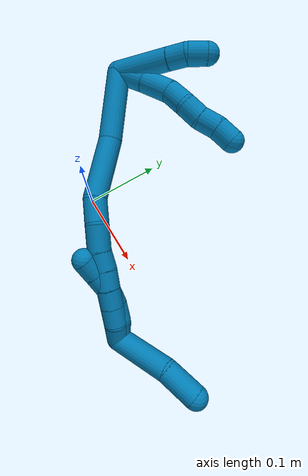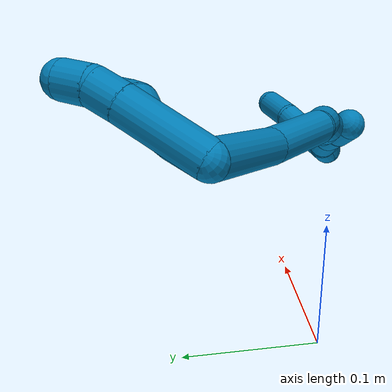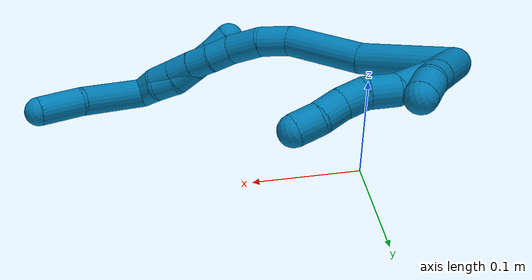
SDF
<sdf version="1.7">
 <world name="default">
  <model name="9">
   <static>0</static>
   <link name="9">
    <collision name="collision-cylinder-e_1_2_8">
     <pose>0.008202 0.013045 -0.002982 -1.79554 0.549912 -0.680235</pose>
     <geometry><cylinder><radius>0.0125</radius><length>0.03139</length></cylinder></geometry>
     <surface>
      <friction><ode><mu>1.16</mu><mu2>1.16</mu2><slip1>0</slip1><slip2>0</slip2></ode></friction>
      <contact><ode><kp>1e+06</kp><kd>1</kd><max_vel>0</max_vel><min_depth>0.001</min_depth></ode></contact>
     </surface>
    </collision>
    <visual name="visual-cylinder-e_1_2_8">
     <pose>0.008202 0.013045 -0.002982 -1.79554 0.549912 -0.680235</pose>
     <geometry><cylinder><radius>0.0125</radius><length>0.03139</length></cylinder></geometry>
     <material><ambient>0 0.490196 0.709804 1</ambient></material>
    </visual>
    <collision name="collision-cylinder-e_2_8_9">
     <pose>0.025999 0.03869 -0.009871 -1.87145 0.628793 -0.831153</pose>
     <geometry><cylinder><radius>0.0125</radius><length>0.032625</length></cylinder></geometry>
     <surface>
      <friction><ode><mu>1.16</mu><mu2>1.16</mu2><slip1>0</slip1><slip2>0</slip2></ode></friction>
      <contact><ode><kp>1e+06</kp><kd>1</kd><max_vel>0</max_vel><min_depth>0.001</min_depth></ode></contact>
     </surface>
    </collision>
    <visual name="visual-cylinder-e_2_8_9">
     <pose>0.025999 0.03869 -0.009871 -1.87145 0.628793 -0.831153</pose>
     <geometry><cylinder><radius>0.0125</radius><length>0.032625</length></cylinder></geometry>
     <material><ambient>0 0.490196 0.709804 1</ambient></material>
    </visual>
    <collision name="collision-cylinder-e_3_9_10">
     <pose>0.044214 0.057784 -0.019119 -2.2591 0.79786 -1.45732</pose>
     <geometry><cylinder><radius>0.0125</radius><length>0.024082</length></cylinder></geometry>
     <surface>
      <friction><ode><mu>1.16</mu><mu2>1.16</mu2><slip1>0</slip1><slip2>0</slip2></ode></friction>
      <contact><ode><kp>1e+06</kp><kd>1</kd><max_vel>0</max_vel><min_depth>0.001</min_depth></ode></contact>
     </surface>
    </collision>
    <visual name="visual-cylinder-e_3_9_10">
     <pose>0.044214 0.057784 -0.019119 -2.2591 0.79786 -1.45732</pose>
     <geometry><cylinder><radius>0.0125</radius><length>0.024082</length></cylinder></geometry>
     <material><ambient>0 0.490196 0.709804 1</ambient></material>
    </visual>
    <collision name="collision-cylinder-e_4_10_11">
     <pose>0.057519 0.071495 -0.030109 -2.23493 0.472588 -0.918096</pose>
     <geometry><cylinder><radius>0.0125</radius><length>0.020588</length></cylinder></geometry>
     <surface>
      <friction><ode><mu>1.16</mu><mu2>1.16</mu2><slip1>0</slip1><slip2>0</slip2></ode></friction>
      <contact><ode><kp>1e+06</kp><kd>1</kd><max_vel>0</max_vel><min_depth>0.001</min_depth></ode></contact>
     </surface>
    </collision>
    <visual name="visual-cylinder-e_4_10_11">
     <pose>0.057519 0.071495 -0.030109 -2.23493 0.472588 -0.918096</pose>
     <geometry><cylinder><radius>0.0125</radius><length>0.020588</length></cylinder></geometry>
     <material><ambient>0 0.490196 0.709804 1</ambient></material>
    </visual>
    <collision name="collision-cylinder-e_5_11_12">
     <pose>0.066346 0.087491 -0.039475 -1.97134 0.409778 -0.607881</pose>
     <geometry><cylinder><radius>0.0125</radius><length>0.020787</length></cylinder></geometry>
     <surface>
      <friction><ode><mu>1.16</mu><mu2>1.16</mu2><slip1>0</slip1><slip2>0</slip2></ode></friction>
      <contact><ode><kp>1e+06</kp><kd>1</kd><max_vel>0</max_vel><min_depth>0.001</min_depth></ode></contact>
     </surface>
    </collision>
    <visual name="visual-cylinder-e_5_11_12">
     <pose>0.066346 0.087491 -0.039475 -1.97134 0.409778 -0.607881</pose>
     <geometry><cylinder><radius>0.0125</radius><length>0.020787</length></cylinder></geometry>
     <material><ambient>0 0.490196 0.709804 1</ambient></material>
    </visual>
    <collision name="collision-cylinder-e_6_12_6">
     <pose>0.075077 0.10356 -0.048771 -2.22389 0.463712 -0.891653</pose>
     <geometry><cylinder><radius>0.0125</radius><length>0.020528</length></cylinder></geometry>
     <surface>
      <friction><ode><mu>1.16</mu><mu2>1.16</mu2><slip1>0</slip1><slip2>0</slip2></ode></friction>
      <contact><ode><kp>1e+06</kp><kd>1</kd><max_vel>0</max_vel><min_depth>0.001</min_depth></ode></contact>
     </surface>
    </collision>
    <visual name="visual-cylinder-e_6_12_6">
     <pose>0.075077 0.10356 -0.048771 -2.22389 0.463712 -0.891653</pose>
     <geometry><cylinder><radius>0.0125</radius><length>0.020528</length></cylinder></geometry>
     <material><ambient>0 0.490196 0.709804 1</ambient></material>
    </visual>
    <collision name="collision-cylinder-e_1_2_13">
     <pose>0.015464 0.023388 0.009375 -1.18956 0.550451 -0.377529</pose>
     <geometry><cylinder><radius>0.0125</radius><length>0.059127</length></cylinder></geometry>
     <surface>
      <friction><ode><mu>1.16</mu><mu2>1.16</mu2><slip1>0</slip1><slip2>0</slip2></ode></friction>
      <contact><ode><kp>1e+06</kp><kd>1</kd><max_vel>0</max_vel><min_depth>0.001</min_depth></ode></contact>
     </surface>
    </collision>
    <visual name="visual-cylinder-e_1_2_13">
     <pose>0.015464 0.023388 0.009375 -1.18956 0.550451 -0.377529</pose>
     <geometry><cylinder><radius>0.0125</radius><length>0.059127</length></cylinder></geometry>
     <material><ambient>0 0.490196 0.709804 1</ambient></material>
    </visual>
    <collision name="collision-cylinder-e_2_13_14">
     <pose>0.035906 0.054932 0.021945 -1.1974 0.516815 -0.356815</pose>
     <geometry><cylinder><radius>0.0125</radius><length>0.020151</length></cylinder></geometry>
     <surface>
      <friction><ode><mu>1.16</mu><mu2>1.16</mu2><slip1>0</slip1><slip2>0</slip2></ode></friction>
      <contact><ode><kp>1e+06</kp><kd>1</kd><max_vel>0</max_vel><min_depth>0.001</min_depth></ode></contact>
     </surface>
    </collision>
    <visual name="visual-cylinder-e_2_13_14">
     <pose>0.035906 0.054932 0.021945 -1.1974 0.516815 -0.356815</pose>
     <geometry><cylinder><radius>0.0125</radius><length>0.020151</length></cylinder></geometry>
     <material><ambient>0 0.490196 0.709804 1</ambient></material>
    </visual>
    <collision name="collision-cylinder-e_3_14_5">
     <pose>0.04372 0.072982 0.026327 -1.45145 0.277239 -0.246314</pose>
     <geometry><cylinder><radius>0.0125</radius><length>0.020722</length></cylinder></geometry>
     <surface>
      <friction><ode><mu>1.16</mu><mu2>1.16</mu2><slip1>0</slip1><slip2>0</slip2></ode></friction>
      <contact><ode><kp>1e+06</kp><kd>1</kd><max_vel>0</max_vel><min_depth>0.001</min_depth></ode></contact>
     </surface>
    </collision>
    <visual name="visual-cylinder-e_3_14_5">
     <pose>0.04372 0.072982 0.026327 -1.45145 0.277239 -0.246314</pose>
     <geometry><cylinder><radius>0.0125</radius><length>0.020722</length></cylinder></geometry>
     <material><ambient>0 0.490196 0.709804 1</ambient></material>
    </visual>
    <collision name="collision-cylinder-e_1_2_15">
     <pose>0.016085 -0.003873 -0.035315 3.03235 0.425132 2.64538</pose>
     <geometry><cylinder><radius>0.0125</radius><length>0.077997</length></cylinder></geometry>
     <surface>
      <friction><ode><mu>1.16</mu><mu2>1.16</mu2><slip1>0</slip1><slip2>0</slip2></ode></friction>
      <contact><ode><kp>1e+06</kp><kd>1</kd><max_vel>0</max_vel><min_depth>0.001</min_depth></ode></contact>
     </surface>
    </collision>
    <visual name="visual-cylinder-e_1_2_15">
     <pose>0.016085 -0.003873 -0.035315 3.03235 0.425132 2.64538</pose>
     <geometry><cylinder><radius>0.0125</radius><length>0.077997</length></cylinder></geometry>
     <material><ambient>0 0.490196 0.709804 1</ambient></material>
    </visual>
    <collision name="collision-cylinder-e_2_15_16">
     <pose>0.048925 -0.015425 -0.098641 2.87405 0.52326 2.21016</pose>
     <geometry><cylinder><radius>0.0125</radius><length>0.067061</length></cylinder></geometry>
     <surface>
      <friction><ode><mu>1.16</mu><mu2>1.16</mu2><slip1>0</slip1><slip2>0</slip2></ode></friction>
      <contact><ode><kp>1e+06</kp><kd>1</kd><max_vel>0</max_vel><min_depth>0.001</min_depth></ode></contact>
     </surface>
    </collision>
    <visual name="visual-cylinder-e_2_15_16">
     <pose>0.048925 -0.015425 -0.098641 2.87405 0.52326 2.21016</pose>
     <geometry><cylinder><radius>0.0125</radius><length>0.067061</length></cylinder></geometry>
     <material><ambient>0 0.490196 0.709804 1</ambient></material>
    </visual>
    <collision name="collision-cylinder-e_3_16_17">
     <pose>0.072172 -0.021924 -0.137803 -3.03621 0.524814 -2.75384</pose>
     <geometry><cylinder><radius>0.0125</radius><length>0.025914</length></cylinder></geometry>
     <surface>
      <friction><ode><mu>1.16</mu><mu2>1.16</mu2><slip1>0</slip1><slip2>0</slip2></ode></friction>
      <contact><ode><kp>1e+06</kp><kd>1</kd><max_vel>0</max_vel><min_depth>0.001</min_depth></ode></contact>
     </surface>
    </collision>
    <visual name="visual-cylinder-e_3_16_17">
     <pose>0.072172 -0.021924 -0.137803 -3.03621 0.524814 -2.75384</pose>
     <geometry><cylinder><radius>0.0125</radius><length>0.025914</length></cylinder></geometry>
     <material><ambient>0 0.490196 0.709804 1</ambient></material>
    </visual>
    <collision name="collision-cylinder-e_4_17_18">
     <pose>0.082448 -0.018887 -0.162711 -3.00739 0.266064 -2.21081</pose>
     <geometry><cylinder><radius>0.0125</radius><length>0.028776</length></cylinder></geometry>
     <surface>
      <friction><ode><mu>1.16</mu><mu2>1.16</mu2><slip1>0</slip1><slip2>0</slip2></ode></friction>
      <contact><ode><kp>1e+06</kp><kd>1</kd><max_vel>0</max_vel><min_depth>0.001</min_depth></ode></contact>
     </surface>
    </collision>
    <visual name="visual-cylinder-e_4_17_18">
     <pose>0.082448 -0.018887 -0.162711 -3.00739 0.266064 -2.21081</pose>
     <geometry><cylinder><radius>0.0125</radius><length>0.028776</length></cylinder></geometry>
     <material><ambient>0 0.490196 0.709804 1</ambient></material>
    </visual>
    <collision name="collision-cylinder-e_5_18_19">
     <pose>0.088723 -0.013723 -0.185629 -2.79524 0.250515 -1.24782</pose>
     <geometry><cylinder><radius>0.0125</radius><length>0.020106</length></cylinder></geometry>
     <surface>
      <friction><ode><mu>1.16</mu><mu2>1.16</mu2><slip1>0</slip1><slip2>0</slip2></ode></friction>
      <contact><ode><kp>1e+06</kp><kd>1</kd><max_vel>0</max_vel><min_depth>0.001</min_depth></ode></contact>
     </surface>
    </collision>
    <visual name="visual-cylinder-e_5_18_19">
     <pose>0.088723 -0.013723 -0.185629 -2.79524 0.250515 -1.24782</pose>
     <geometry><cylinder><radius>0.0125</radius><length>0.020106</length></cylinder></geometry>
     <material><ambient>0 0.490196 0.709804 1</ambient></material>
    </visual>
    <collision name="collision-cylinder-e_6_19_20">
     <pose>0.093541 -0.008243 -0.204336 -2.91764 0.233202 -1.61161</pose>
     <geometry><cylinder><radius>0.0125</radius><length>0.020126</length></cylinder></geometry>
     <surface>
      <friction><ode><mu>1.16</mu><mu2>1.16</mu2><slip1>0</slip1><slip2>0</slip2></ode></friction>
      <contact><ode><kp>1e+06</kp><kd>1</kd><max_vel>0</max_vel><min_depth>0.001</min_depth></ode></contact>
     </surface>
    </collision>
    <visual name="visual-cylinder-e_6_19_20">
     <pose>0.093541 -0.008243 -0.204336 -2.91764 0.233202 -1.61161</pose>
     <geometry><cylinder><radius>0.0125</radius><length>0.020126</length></cylinder></geometry>
     <material><ambient>0 0.490196 0.709804 1</ambient></material>
    </visual>
    <collision name="collision-cylinder-e_7_20_21">
     <pose>0.097638 -0.003479 -0.22338 -2.87542 0.178107 -1.1764</pose>
     <geometry><cylinder><radius>0.0125</radius><length>0.020006</length></cylinder></geometry>
     <surface>
      <friction><ode><mu>1.16</mu><mu2>1.16</mu2><slip1>0</slip1><slip2>0</slip2></ode></friction>
      <contact><ode><kp>1e+06</kp><kd>1</kd><max_vel>0</max_vel><min_depth>0.001</min_depth></ode></contact>
     </surface>
    </collision>
    <visual name="visual-cylinder-e_7_20_21">
     <pose>0.097638 -0.003479 -0.22338 -2.87542 0.178107 -1.1764</pose>
     <geometry><cylinder><radius>0.0125</radius><length>0.020006</length></cylinder></geometry>
     <material><ambient>0 0.490196 0.709804 1</ambient></material>
    </visual>
    <collision name="collision-cylinder-e_8_21_22">
     <pose>0.101177 0.001647 -0.242394 -2.88114 0.177465 -1.19341</pose>
     <geometry><cylinder><radius>0.0125</radius><length>0.020012</length></cylinder></geometry>
     <surface>
      <friction><ode><mu>1.16</mu><mu2>1.16</mu2><slip1>0</slip1><slip2>0</slip2></ode></friction>
      <contact><ode><kp>1e+06</kp><kd>1</kd><max_vel>0</max_vel><min_depth>0.001</min_depth></ode></contact>
     </surface>
    </collision>
    <visual name="visual-cylinder-e_8_21_22">
     <pose>0.101177 0.001647 -0.242394 -2.88114 0.177465 -1.19341</pose>
     <geometry><cylinder><radius>0.0125</radius><length>0.020012</length></cylinder></geometry>
     <material><ambient>0 0.490196 0.709804 1</ambient></material>
    </visual>
    <collision name="collision-cylinder-e_9_22_1">
     <pose>0.102142 0.006597 -0.261583 -2.89706 -0.080242 0.631504</pose>
     <geometry><cylinder><radius>0.0125</radius><length>0.020002</length></cylinder></geometry>
     <surface>
      <friction><ode><mu>1.16</mu><mu2>1.16</mu2><slip1>0</slip1><slip2>0</slip2></ode></friction>
      <contact><ode><kp>1e+06</kp><kd>1</kd><max_vel>0</max_vel><min_depth>0.001</min_depth></ode></contact>
     </surface>
    </collision>
    <visual name="visual-cylinder-e_9_22_1">
     <pose>0.102142 0.006597 -0.261583 -2.89706 -0.080242 0.631504</pose>
     <geometry><cylinder><radius>0.0125</radius><length>0.020002</length></cylinder></geometry>
     <material><ambient>0 0.490196 0.709804 1</ambient></material>
    </visual>
    <collision name="collision-cylinder-e_1_1_23">
     <pose>0.10058 0.008577 -0.261294 0.043477 -0.076086 -0.001655</pose>
     <geometry><cylinder><radius>0.0125</radius><length>0.02</length></cylinder></geometry>
     <surface>
      <friction><ode><mu>1.16</mu><mu2>1.16</mu2><slip1>0</slip1><slip2>0</slip2></ode></friction>
      <contact><ode><kp>1e+06</kp><kd>1</kd><max_vel>0</max_vel><min_depth>0.001</min_depth></ode></contact>
     </surface>
    </collision>
    <visual name="visual-cylinder-e_1_1_23">
     <pose>0.10058 0.008577 -0.261294 0.043477 -0.076086 -0.001655</pose>
     <geometry><cylinder><radius>0.0125</radius><length>0.02</length></cylinder></geometry>
     <material><ambient>0 0.490196 0.709804 1</ambient></material>
    </visual>
    <collision name="collision-cylinder-e_2_23_24">
     <pose>0.096866 0.005448 -0.242167 0.286041 -0.299837 -0.043497</pose>
     <geometry><cylinder><radius>0.0125</radius><length>0.02</length></cylinder></geometry>
     <surface>
      <friction><ode><mu>1.16</mu><mu2>1.16</mu2><slip1>0</slip1><slip2>0</slip2></ode></friction>
      <contact><ode><kp>1e+06</kp><kd>1</kd><max_vel>0</max_vel><min_depth>0.001</min_depth></ode></contact>
     </surface>
    </collision>
    <visual name="visual-cylinder-e_2_23_24">
     <pose>0.096866 0.005448 -0.242167 0.286041 -0.299837 -0.043497</pose>
     <geometry><cylinder><radius>0.0125</radius><length>0.02</length></cylinder></geometry>
     <material><ambient>0 0.490196 0.709804 1</ambient></material>
    </visual>
    <collision name="collision-cylinder-e_3_24_25">
     <pose>0.093408 -0.001755 -0.224089 0.468227 -0.050431 -0.01203</pose>
     <geometry><cylinder><radius>0.0125</radius><length>0.02</length></cylinder></geometry>
     <surface>
      <friction><ode><mu>1.16</mu><mu2>1.16</mu2><slip1>0</slip1><slip2>0</slip2></ode></friction>
      <contact><ode><kp>1e+06</kp><kd>1</kd><max_vel>0</max_vel><min_depth>0.001</min_depth></ode></contact>
     </surface>
    </collision>
    <visual name="visual-cylinder-e_3_24_25">
     <pose>0.093408 -0.001755 -0.224089 0.468227 -0.050431 -0.01203</pose>
     <geometry><cylinder><radius>0.0125</radius><length>0.02</length></cylinder></geometry>
     <material><ambient>0 0.490196 0.709804 1</ambient></material>
    </visual>
    <collision name="collision-cylinder-e_4_25_26">
     <pose>0.091529 -0.012815 -0.207748 0.722873 -0.137928 -0.052214</pose>
     <geometry><cylinder><radius>0.0125</radius><length>0.02</length></cylinder></geometry>
     <surface>
      <friction><ode><mu>1.16</mu><mu2>1.16</mu2><slip1>0</slip1><slip2>0</slip2></ode></friction>
      <contact><ode><kp>1e+06</kp><kd>1</kd><max_vel>0</max_vel><min_depth>0.001</min_depth></ode></contact>
     </surface>
    </collision>
    <visual name="visual-cylinder-e_4_25_26">
     <pose>0.091529 -0.012815 -0.207748 0.722873 -0.137928 -0.052214</pose>
     <geometry><cylinder><radius>0.0125</radius><length>0.02</length></cylinder></geometry>
     <material><ambient>0 0.490196 0.709804 1</ambient></material>
    </visual>
    <collision name="collision-cylinder-e_5_26_4">
     <pose>0.089808 -0.025906 -0.192762 0.713174 -0.034616 -0.012896</pose>
     <geometry><cylinder><radius>0.0125</radius><length>0.02</length></cylinder></geometry>
     <surface>
      <friction><ode><mu>1.16</mu><mu2>1.16</mu2><slip1>0</slip1><slip2>0</slip2></ode></friction>
      <contact><ode><kp>1e+06</kp><kd>1</kd><max_vel>0</max_vel><min_depth>0.001</min_depth></ode></contact>
     </surface>
    </collision>
    <visual name="visual-cylinder-e_5_26_4">
     <pose>0.089808 -0.025906 -0.192762 0.713174 -0.034616 -0.012896</pose>
     <geometry><cylinder><radius>0.0125</radius><length>0.02</length></cylinder></geometry>
     <material><ambient>0 0.490196 0.709804 1</ambient></material>
    </visual>
    <collision name="collision-cylinder-e_1_1_27">
     <pose>0.123444 0.030687 -0.275495 -1.76392 0.785786 -0.932636</pose>
     <geometry><cylinder><radius>0.0125</radius><length>0.062496</length></cylinder></geometry>
     <surface>
      <friction><ode><mu>1.16</mu><mu2>1.16</mu2><slip1>0</slip1><slip2>0</slip2></ode></friction>
      <contact><ode><kp>1e+06</kp><kd>1</kd><max_vel>0</max_vel><min_depth>0.001</min_depth></ode></contact>
     </surface>
    </collision>
    <visual name="visual-cylinder-e_1_1_27">
     <pose>0.123444 0.030687 -0.275495 -1.76392 0.785786 -0.932636</pose>
     <geometry><cylinder><radius>0.0125</radius><length>0.062496</length></cylinder></geometry>
     <material><ambient>0 0.490196 0.709804 1</ambient></material>
    </visual>
    <collision name="collision-cylinder-e_2_27_3">
     <pose>0.157404 0.06499 -0.28692 -2.08821 0.684447 -1.09933</pose>
     <geometry><cylinder><radius>0.0125</radius><length>0.037504</length></cylinder></geometry>
     <surface>
      <friction><ode><mu>1.16</mu><mu2>1.16</mu2><slip1>0</slip1><slip2>0</slip2></ode></friction>
      <contact><ode><kp>1e+06</kp><kd>1</kd><max_vel>0</max_vel><min_depth>0.001</min_depth></ode></contact>
     </surface>
    </collision>
    <visual name="visual-cylinder-e_2_27_3">
     <pose>0.157404 0.06499 -0.28692 -2.08821 0.684447 -1.09933</pose>
     <geometry><cylinder><radius>0.0125</radius><length>0.037504</length></cylinder></geometry>
     <material><ambient>0 0.490196 0.709804 1</ambient></material>
    </visual>
    <collision name="collision-sphere-3">
     <pose>0.16926 0.077616 -0.294106 0 -0 0</pose>
     <geometry><sphere><radius>0.0125</radius></sphere></geometry>
     <surface>
      <friction><ode><mu>1.16</mu><mu2>1.16</mu2><slip1>0</slip1><slip2>0</slip2></ode></friction>
      <contact><ode><kp>1e+06</kp><kd>1</kd><max_vel>0</max_vel><min_depth>0.001</min_depth></ode></contact>
     </surface>
    </collision>
    <visual name="visual-sphere-3">
     <pose>0.16926 0.077616 -0.294106 0 -0 0</pose>
     <geometry><sphere><radius>0.0125</radius></sphere></geometry>
     <material><ambient>0 0.490196 0.709804 1</ambient></material>
    </visual>
    <collision name="collision-sphere-27">
     <pose>0.145549 0.052363 -0.279734 0 -0 0</pose>
     <geometry><sphere><radius>0.0125</radius></sphere></geometry>
     <surface>
      <friction><ode><mu>1.16</mu><mu2>1.16</mu2><slip1>0</slip1><slip2>0</slip2></ode></friction>
      <contact><ode><kp>1e+06</kp><kd>1</kd><max_vel>0</max_vel><min_depth>0.001</min_depth></ode></contact>
     </surface>
    </collision>
    <visual name="visual-sphere-27">
     <pose>0.145549 0.052363 -0.279734 0 -0 0</pose>
     <geometry><sphere><radius>0.0125</radius></sphere></geometry>
     <material><ambient>0 0.490196 0.709804 1</ambient></material>
    </visual>
    <collision name="collision-sphere-4">
     <pose>0.089462 -0.032445 -0.185204 0 -0 0</pose>
     <geometry><sphere><radius>0.0125</radius></sphere></geometry>
     <surface>
      <friction><ode><mu>1.16</mu><mu2>1.16</mu2><slip1>0</slip1><slip2>0</slip2></ode></friction>
      <contact><ode><kp>1e+06</kp><kd>1</kd><max_vel>0</max_vel><min_depth>0.001</min_depth></ode></contact>
     </surface>
    </collision>
    <visual name="visual-sphere-4">
     <pose>0.089462 -0.032445 -0.185204 0 -0 0</pose>
     <geometry><sphere><radius>0.0125</radius></sphere></geometry>
     <material><ambient>0 0.490196 0.709804 1</ambient></material>
    </visual>
    <collision name="collision-sphere-26">
     <pose>0.090154 -0.019368 -0.20032 0 -0 0</pose>
     <geometry><sphere><radius>0.0125</radius></sphere></geometry>
     <surface>
      <friction><ode><mu>1.16</mu><mu2>1.16</mu2><slip1>0</slip1><slip2>0</slip2></ode></friction>
      <contact><ode><kp>1e+06</kp><kd>1</kd><max_vel>0</max_vel><min_depth>0.001</min_depth></ode></contact>
     </surface>
    </collision>
    <visual name="visual-sphere-26">
     <pose>0.090154 -0.019368 -0.20032 0 -0 0</pose>
     <geometry><sphere><radius>0.0125</radius></sphere></geometry>
     <material><ambient>0 0.490196 0.709804 1</ambient></material>
    </visual>
    <collision name="collision-sphere-25">
     <pose>0.092904 -0.006263 -0.215176 0 -0 0</pose>
     <geometry><sphere><radius>0.0125</radius></sphere></geometry>
     <surface>
      <friction><ode><mu>1.16</mu><mu2>1.16</mu2><slip1>0</slip1><slip2>0</slip2></ode></friction>
      <contact><ode><kp>1e+06</kp><kd>1</kd><max_vel>0</max_vel><min_depth>0.001</min_depth></ode></contact>
     </surface>
    </collision>
    <visual name="visual-sphere-25">
     <pose>0.092904 -0.006263 -0.215176 0 -0 0</pose>
     <geometry><sphere><radius>0.0125</radius></sphere></geometry>
     <material><ambient>0 0.490196 0.709804 1</ambient></material>
    </visual>
    <collision name="collision-sphere-24">
     <pose>0.093912 0.002752 -0.233001 0 -0 0</pose>
     <geometry><sphere><radius>0.0125</radius></sphere></geometry>
     <surface>
      <friction><ode><mu>1.16</mu><mu2>1.16</mu2><slip1>0</slip1><slip2>0</slip2></ode></friction>
      <contact><ode><kp>1e+06</kp><kd>1</kd><max_vel>0</max_vel><min_depth>0.001</min_depth></ode></contact>
     </surface>
    </collision>
    <visual name="visual-sphere-24">
     <pose>0.093912 0.002752 -0.233001 0 -0 0</pose>
     <geometry><sphere><radius>0.0125</radius></sphere></geometry>
     <material><ambient>0 0.490196 0.709804 1</ambient></material>
    </visual>
    <collision name="collision-sphere-23">
     <pose>0.09982 0.008143 -0.251332 0 -0 0</pose>
     <geometry><sphere><radius>0.0125</radius></sphere></geometry>
     <surface>
      <friction><ode><mu>1.16</mu><mu2>1.16</mu2><slip1>0</slip1><slip2>0</slip2></ode></friction>
      <contact><ode><kp>1e+06</kp><kd>1</kd><max_vel>0</max_vel><min_depth>0.001</min_depth></ode></contact>
     </surface>
    </collision>
    <visual name="visual-sphere-23">
     <pose>0.09982 0.008143 -0.251332 0 -0 0</pose>
     <geometry><sphere><radius>0.0125</radius></sphere></geometry>
     <material><ambient>0 0.490196 0.709804 1</ambient></material>
    </visual>
    <collision name="collision-sphere-1">
     <pose>0.10134 0.00901 -0.271256 0 -0 0</pose>
     <geometry><sphere><radius>0.0125</radius></sphere></geometry>
     <surface>
      <friction><ode><mu>1.16</mu><mu2>1.16</mu2><slip1>0</slip1><slip2>0</slip2></ode></friction>
      <contact><ode><kp>1e+06</kp><kd>1</kd><max_vel>0</max_vel><min_depth>0.001</min_depth></ode></contact>
     </surface>
    </collision>
    <visual name="visual-sphere-1">
     <pose>0.10134 0.00901 -0.271256 0 -0 0</pose>
     <geometry><sphere><radius>0.0125</radius></sphere></geometry>
     <material><ambient>0 0.490196 0.709804 1</ambient></material>
    </visual>
    <collision name="collision-sphere-22">
     <pose>0.102943 0.004183 -0.251911 0 -0 0</pose>
     <geometry><sphere><radius>0.0125</radius></sphere></geometry>
     <surface>
      <friction><ode><mu>1.16</mu><mu2>1.16</mu2><slip1>0</slip1><slip2>0</slip2></ode></friction>
      <contact><ode><kp>1e+06</kp><kd>1</kd><max_vel>0</max_vel><min_depth>0.001</min_depth></ode></contact>
     </surface>
    </collision>
    <visual name="visual-sphere-22">
     <pose>0.102943 0.004183 -0.251911 0 -0 0</pose>
     <geometry><sphere><radius>0.0125</radius></sphere></geometry>
     <material><ambient>0 0.490196 0.709804 1</ambient></material>
    </visual>
    <collision name="collision-sphere-21">
     <pose>0.09941 -0.000889 -0.232878 0 -0 0</pose>
     <geometry><sphere><radius>0.0125</radius></sphere></geometry>
     <surface>
      <friction><ode><mu>1.16</mu><mu2>1.16</mu2><slip1>0</slip1><slip2>0</slip2></ode></friction>
      <contact><ode><kp>1e+06</kp><kd>1</kd><max_vel>0</max_vel><min_depth>0.001</min_depth></ode></contact>
     </surface>
    </collision>
    <visual name="visual-sphere-21">
     <pose>0.09941 -0.000889 -0.232878 0 -0 0</pose>
     <geometry><sphere><radius>0.0125</radius></sphere></geometry>
     <material><ambient>0 0.490196 0.709804 1</ambient></material>
    </visual>
    <collision name="collision-sphere-12">
     <pose>0.070487 0.09627 -0.043193 0 -0 0</pose>
     <geometry><sphere><radius>0.0125</radius></sphere></geometry>
     <surface>
      <friction><ode><mu>1.16</mu><mu2>1.16</mu2><slip1>0</slip1><slip2>0</slip2></ode></friction>
      <contact><ode><kp>1e+06</kp><kd>1</kd><max_vel>0</max_vel><min_depth>0.001</min_depth></ode></contact>
     </surface>
    </collision>
    <visual name="visual-sphere-12">
     <pose>0.070487 0.09627 -0.043193 0 -0 0</pose>
     <geometry><sphere><radius>0.0125</radius></sphere></geometry>
     <material><ambient>0 0.490196 0.709804 1</ambient></material>
    </visual>
    <collision name="collision-sphere-11">
     <pose>0.062205 0.078712 -0.035758 0 -0 0</pose>
     <geometry><sphere><radius>0.0125</radius></sphere></geometry>
     <surface>
      <friction><ode><mu>1.16</mu><mu2>1.16</mu2><slip1>0</slip1><slip2>0</slip2></ode></friction>
      <contact><ode><kp>1e+06</kp><kd>1</kd><max_vel>0</max_vel><min_depth>0.001</min_depth></ode></contact>
     </surface>
    </collision>
    <visual name="visual-sphere-11">
     <pose>0.062205 0.078712 -0.035758 0 -0 0</pose>
     <geometry><sphere><radius>0.0125</radius></sphere></geometry>
     <material><ambient>0 0.490196 0.709804 1</ambient></material>
    </visual>
    <collision name="collision-sphere-10">
     <pose>0.052833 0.064277 -0.024459 0 -0 0</pose>
     <geometry><sphere><radius>0.0125</radius></sphere></geometry>
     <surface>
      <friction><ode><mu>1.16</mu><mu2>1.16</mu2><slip1>0</slip1><slip2>0</slip2></ode></friction>
      <contact><ode><kp>1e+06</kp><kd>1</kd><max_vel>0</max_vel><min_depth>0.001</min_depth></ode></contact>
     </surface>
    </collision>
    <visual name="visual-sphere-10">
     <pose>0.052833 0.064277 -0.024459 0 -0 0</pose>
     <geometry><sphere><radius>0.0125</radius></sphere></geometry>
     <material><ambient>0 0.490196 0.709804 1</ambient></material>
    </visual>
    <collision name="collision-sphere-9">
     <pose>0.035594 0.051291 -0.013778 0 -0 0</pose>
     <geometry><sphere><radius>0.0125</radius></sphere></geometry>
     <surface>
      <friction><ode><mu>1.16</mu><mu2>1.16</mu2><slip1>0</slip1><slip2>0</slip2></ode></friction>
      <contact><ode><kp>1e+06</kp><kd>1</kd><max_vel>0</max_vel><min_depth>0.001</min_depth></ode></contact>
     </surface>
    </collision>
    <visual name="visual-sphere-9">
     <pose>0.035594 0.051291 -0.013778 0 -0 0</pose>
     <geometry><sphere><radius>0.0125</radius></sphere></geometry>
     <material><ambient>0 0.490196 0.709804 1</ambient></material>
    </visual>
    <collision name="collision-sphere-2">
     <geometry><sphere><radius>0.0125</radius></sphere></geometry>
     <surface>
      <friction><ode><mu>1.16</mu><mu2>1.16</mu2><slip1>0</slip1><slip2>0</slip2></ode></friction>
      <contact><ode><kp>1e+06</kp><kd>1</kd><max_vel>0</max_vel><min_depth>0.001</min_depth></ode></contact>
     </surface>
    </collision>
    <visual name="visual-sphere-2">
     <geometry><sphere><radius>0.0125</radius></sphere></geometry>
     <material><ambient>0 0.490196 0.709804 1</ambient></material>
    </visual>
    <collision name="collision-sphere-19">
     <pose>0.091215 -0.010417 -0.194789 0 -0 0</pose>
     <geometry><sphere><radius>0.0125</radius></sphere></geometry>
     <surface>
      <friction><ode><mu>1.16</mu><mu2>1.16</mu2><slip1>0</slip1><slip2>0</slip2></ode></friction>
      <contact><ode><kp>1e+06</kp><kd>1</kd><max_vel>0</max_vel><min_depth>0.001</min_depth></ode></contact>
     </surface>
    </collision>
    <visual name="visual-sphere-19">
     <pose>0.091215 -0.010417 -0.194789 0 -0 0</pose>
     <geometry><sphere><radius>0.0125</radius></sphere></geometry>
     <material><ambient>0 0.490196 0.709804 1</ambient></material>
    </visual>
    <collision name="collision-sphere-8">
     <pose>0.016405 0.026089 -0.005964 0 -0 0</pose>
     <geometry><sphere><radius>0.0125</radius></sphere></geometry>
     <surface>
      <friction><ode><mu>1.16</mu><mu2>1.16</mu2><slip1>0</slip1><slip2>0</slip2></ode></friction>
      <contact><ode><kp>1e+06</kp><kd>1</kd><max_vel>0</max_vel><min_depth>0.001</min_depth></ode></contact>
     </surface>
    </collision>
    <visual name="visual-sphere-8">
     <pose>0.016405 0.026089 -0.005964 0 -0 0</pose>
     <geometry><sphere><radius>0.0125</radius></sphere></geometry>
     <material><ambient>0 0.490196 0.709804 1</ambient></material>
    </visual>
    <collision name="collision-sphere-6">
     <pose>0.079668 0.110851 -0.054349 0 -0 0</pose>
     <geometry><sphere><radius>0.0125</radius></sphere></geometry>
     <surface>
      <friction><ode><mu>1.16</mu><mu2>1.16</mu2><slip1>0</slip1><slip2>0</slip2></ode></friction>
      <contact><ode><kp>1e+06</kp><kd>1</kd><max_vel>0</max_vel><min_depth>0.001</min_depth></ode></contact>
     </surface>
    </collision>
    <visual name="visual-sphere-6">
     <pose>0.079668 0.110851 -0.054349 0 -0 0</pose>
     <geometry><sphere><radius>0.0125</radius></sphere></geometry>
     <material><ambient>0 0.490196 0.709804 1</ambient></material>
    </visual>
    <collision name="collision-sphere-13">
     <pose>0.030928 0.046776 0.01875 0 -0 0</pose>
     <geometry><sphere><radius>0.0125</radius></sphere></geometry>
     <surface>
      <friction><ode><mu>1.16</mu><mu2>1.16</mu2><slip1>0</slip1><slip2>0</slip2></ode></friction>
      <contact><ode><kp>1e+06</kp><kd>1</kd><max_vel>0</max_vel><min_depth>0.001</min_depth></ode></contact>
     </surface>
    </collision>
    <visual name="visual-sphere-13">
     <pose>0.030928 0.046776 0.01875 0 -0 0</pose>
     <geometry><sphere><radius>0.0125</radius></sphere></geometry>
     <material><ambient>0 0.490196 0.709804 1</ambient></material>
    </visual>
    <collision name="collision-sphere-14">
     <pose>0.040885 0.063087 0.02514 0 -0 0</pose>
     <geometry><sphere><radius>0.0125</radius></sphere></geometry>
     <surface>
      <friction><ode><mu>1.16</mu><mu2>1.16</mu2><slip1>0</slip1><slip2>0</slip2></ode></friction>
      <contact><ode><kp>1e+06</kp><kd>1</kd><max_vel>0</max_vel><min_depth>0.001</min_depth></ode></contact>
     </surface>
    </collision>
    <visual name="visual-sphere-14">
     <pose>0.040885 0.063087 0.02514 0 -0 0</pose>
     <geometry><sphere><radius>0.0125</radius></sphere></geometry>
     <material><ambient>0 0.490196 0.709804 1</ambient></material>
    </visual>
    <collision name="collision-sphere-5">
     <pose>0.046556 0.082876 0.027513 0 -0 0</pose>
     <geometry><sphere><radius>0.0125</radius></sphere></geometry>
     <surface>
      <friction><ode><mu>1.16</mu><mu2>1.16</mu2><slip1>0</slip1><slip2>0</slip2></ode></friction>
      <contact><ode><kp>1e+06</kp><kd>1</kd><max_vel>0</max_vel><min_depth>0.001</min_depth></ode></contact>
     </surface>
    </collision>
    <visual name="visual-sphere-5">
     <pose>0.046556 0.082876 0.027513 0 -0 0</pose>
     <geometry><sphere><radius>0.0125</radius></sphere></geometry>
     <material><ambient>0 0.490196 0.709804 1</ambient></material>
    </visual>
    <collision name="collision-sphere-15">
     <pose>0.032169 -0.007746 -0.07063 0 -0 0</pose>
     <geometry><sphere><radius>0.0125</radius></sphere></geometry>
     <surface>
      <friction><ode><mu>1.16</mu><mu2>1.16</mu2><slip1>0</slip1><slip2>0</slip2></ode></friction>
      <contact><ode><kp>1e+06</kp><kd>1</kd><max_vel>0</max_vel><min_depth>0.001</min_depth></ode></contact>
     </surface>
    </collision>
    <visual name="visual-sphere-15">
     <pose>0.032169 -0.007746 -0.07063 0 -0 0</pose>
     <geometry><sphere><radius>0.0125</radius></sphere></geometry>
     <material><ambient>0 0.490196 0.709804 1</ambient></material>
    </visual>
    <collision name="collision-sphere-16">
     <pose>0.06568 -0.023103 -0.126652 0 -0 0</pose>
     <geometry><sphere><radius>0.0125</radius></sphere></geometry>
     <surface>
      <friction><ode><mu>1.16</mu><mu2>1.16</mu2><slip1>0</slip1><slip2>0</slip2></ode></friction>
      <contact><ode><kp>1e+06</kp><kd>1</kd><max_vel>0</max_vel><min_depth>0.001</min_depth></ode></contact>
     </surface>
    </collision>
    <visual name="visual-sphere-16">
     <pose>0.06568 -0.023103 -0.126652 0 -0 0</pose>
     <geometry><sphere><radius>0.0125</radius></sphere></geometry>
     <material><ambient>0 0.490196 0.709804 1</ambient></material>
    </visual>
    <collision name="collision-sphere-17">
     <pose>0.078665 -0.020744 -0.148954 0 -0 0</pose>
     <geometry><sphere><radius>0.0125</radius></sphere></geometry>
     <surface>
      <friction><ode><mu>1.16</mu><mu2>1.16</mu2><slip1>0</slip1><slip2>0</slip2></ode></friction>
      <contact><ode><kp>1e+06</kp><kd>1</kd><max_vel>0</max_vel><min_depth>0.001</min_depth></ode></contact>
     </surface>
    </collision>
    <visual name="visual-sphere-17">
     <pose>0.078665 -0.020744 -0.148954 0 -0 0</pose>
     <geometry><sphere><radius>0.0125</radius></sphere></geometry>
     <material><ambient>0 0.490196 0.709804 1</ambient></material>
    </visual>
    <collision name="collision-sphere-18">
     <pose>0.086231 -0.017029 -0.176468 0 -0 0</pose>
     <geometry><sphere><radius>0.0125</radius></sphere></geometry>
     <surface>
      <friction><ode><mu>1.16</mu><mu2>1.16</mu2><slip1>0</slip1><slip2>0</slip2></ode></friction>
      <contact><ode><kp>1e+06</kp><kd>1</kd><max_vel>0</max_vel><min_depth>0.001</min_depth></ode></contact>
     </surface>
    </collision>
    <visual name="visual-sphere-18">
     <pose>0.086231 -0.017029 -0.176468 0 -0 0</pose>
     <geometry><sphere><radius>0.0125</radius></sphere></geometry>
     <material><ambient>0 0.490196 0.709804 1</ambient></material>
    </visual>
    <collision name="collision-sphere-20">
     <pose>0.095866 -0.006068 -0.213882 0 -0 0</pose>
     <geometry><sphere><radius>0.0125</radius></sphere></geometry>
     <surface>
      <friction><ode><mu>1.16</mu><mu2>1.16</mu2><slip1>0</slip1><slip2>0</slip2></ode></friction>
      <contact><ode><kp>1e+06</kp><kd>1</kd><max_vel>0</max_vel><min_depth>0.001</min_depth></ode></contact>
     </surface>
    </collision>
    <visual name="visual-sphere-20">
     <pose>0.095866 -0.006068 -0.213882 0 -0 0</pose>
     <geometry><sphere><radius>0.0125</radius></sphere></geometry>
     <material><ambient>0 0.490196 0.709804 1</ambient></material>
    </visual>
    <inertial>
     <pose>0.067129 0.018018 -0.123112 0 -0 0</pose>
     <mass>0.75</mass>
     <inertia>
      <ixx>1.4e-05</ixx>
      <ixy>0</ixy>
      <ixz>0</ixz>
      <iyy>0.000105</iyy>
      <iyz>0</iyz>
      <izz>-0.000129</izz>
     </inertia>
    </inertial>
   </link>
   <pose>-0.039881 0.082134 0.171657 -0.351907 -0.81238 -0.234402</pose>
  </model>
 </world>
</sdf>
